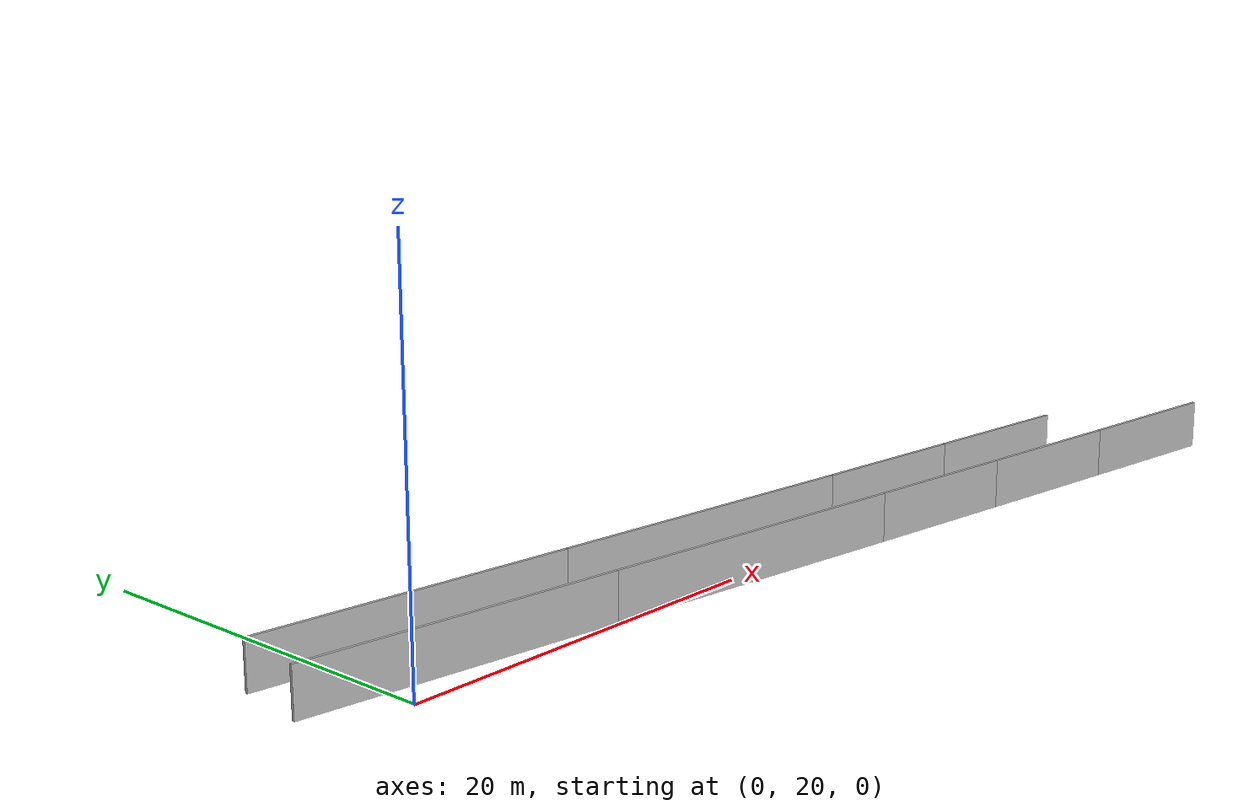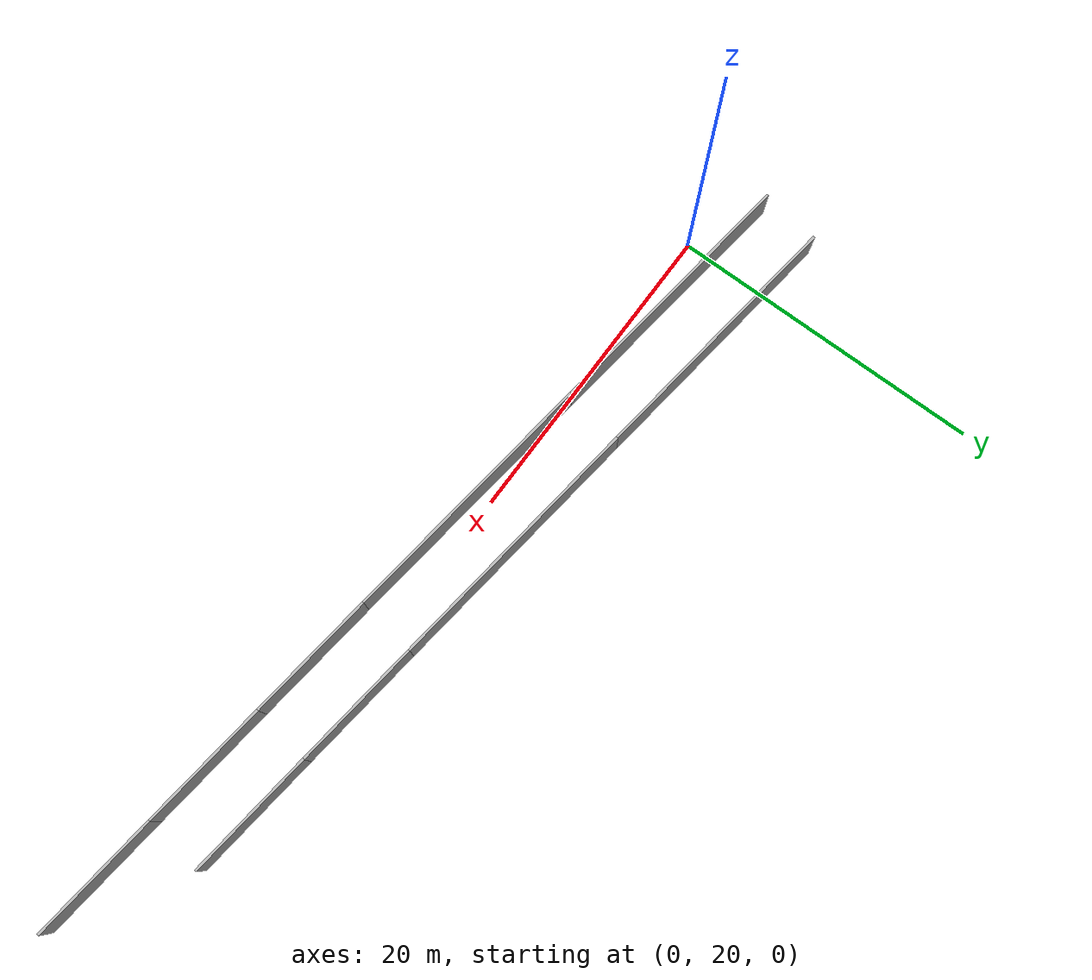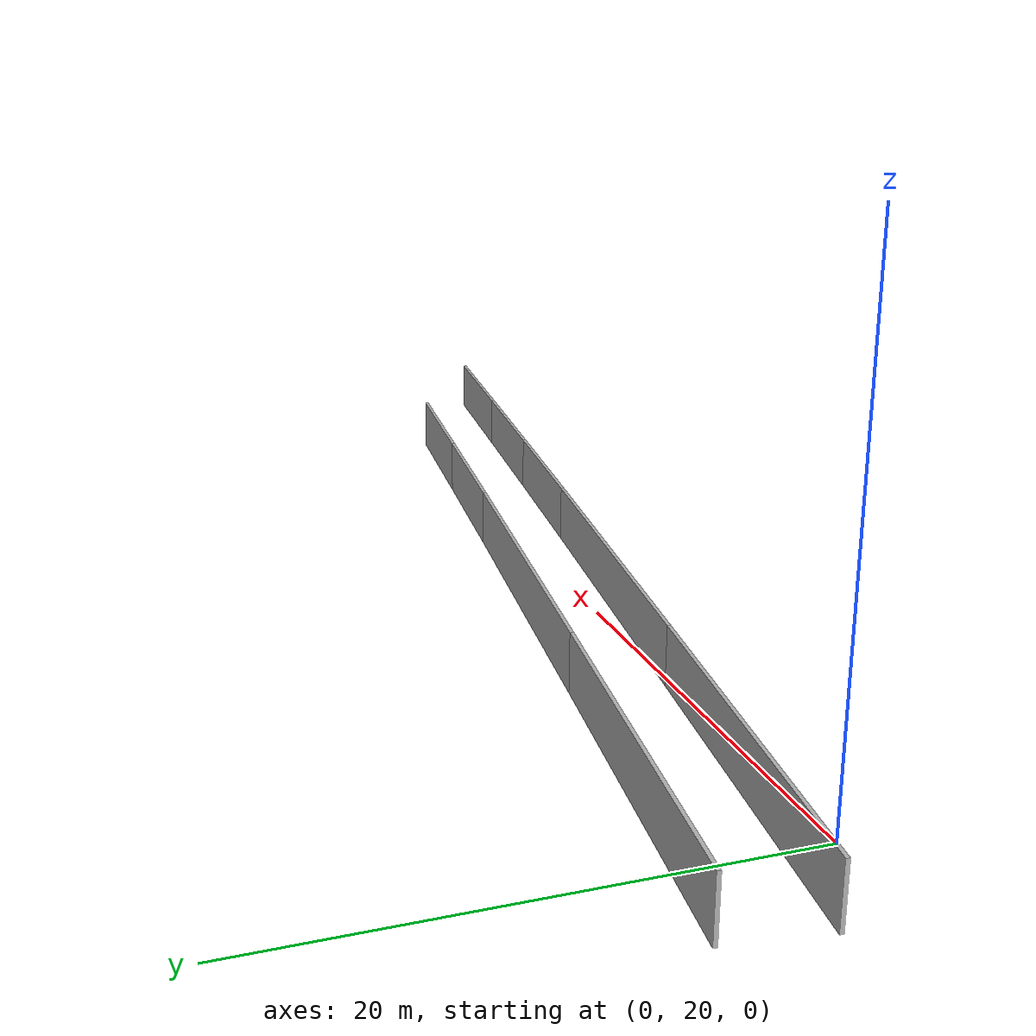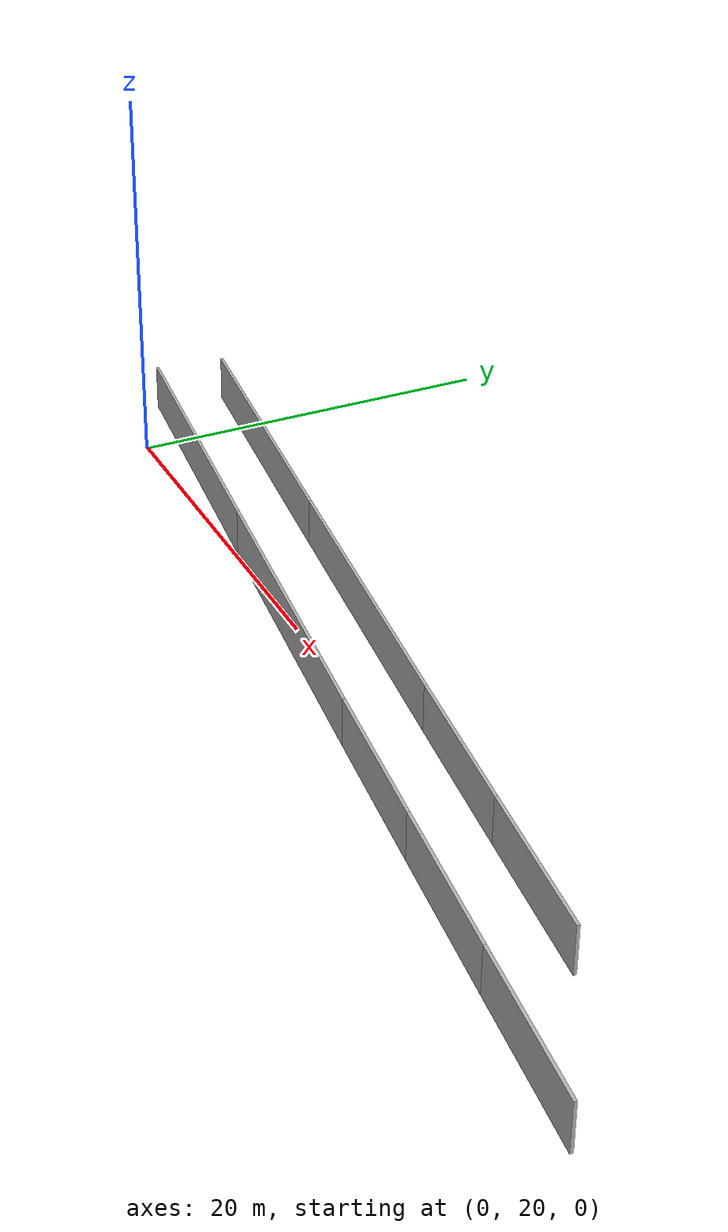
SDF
<?xml version="1.0" ?>
<sdf version="1.6">
  <model name="sps_3502">
    <pose frame="">0 0 0 0 -0 0</pose>
    <static>1</static>
    <self_collide>0</self_collide>
    <allow_auto_disable>0</allow_auto_disable>
    <link name="Wall4222">
      <kinematic>0</kinematic>
      <gravity>1</gravity>
      <self_collide>0</self_collide>
      <collision name="collision">
        <geometry>
          <box>
            <size>16.9873 0.15 2.5</size>
          </box>
        </geometry>
        <pose frame="">0 0 0 0 -0 0</pose>
      </collision>
      <visual name="visual">
        <geometry>
          <box>
            <size>16.9873 0.15 2.5</size>
          </box>
        </geometry>
        <pose frame="">0 0 0 0 -0 0</pose>
        <cast_shadows>1</cast_shadows>
        <transparency>0.0</transparency>
      </visual>
      <pose frame="">4.54745 25.0352 1.25 0 0 -0.128149</pose>
    </link>
    <link name="Wall4223">
      <kinematic>0</kinematic>
      <gravity>1</gravity>
      <self_collide>0</self_collide>
      <collision name="collision">
        <geometry>
          <box>
            <size>16.9874 0.15 2.5</size>
          </box>
        </geometry>
        <pose frame="">0 0 0 0 -0 0</pose>
      </collision>
      <visual name="visual">
        <geometry>
          <box>
            <size>16.9874 0.15 2.5</size>
          </box>
        </geometry>
        <pose frame="">0 0 0 0 -0 0</pose>
        <cast_shadows>1</cast_shadows>
        <transparency>0.0</transparency>
      </visual>
      <pose frame="">21.3981 22.8841 1.25 0 0 -0.12579</pose>
    </link>
    <link name="Wall4224">
      <kinematic>0</kinematic>
      <gravity>1</gravity>
      <self_collide>0</self_collide>
      <collision name="collision">
        <geometry>
          <box>
            <size>8.25191 0.15 2.5</size>
          </box>
        </geometry>
        <pose frame="">0 0 0 0 -0 0</pose>
      </collision>
      <visual name="visual">
        <geometry>
          <box>
            <size>8.25191 0.15 2.5</size>
          </box>
        </geometry>
        <pose frame="">0 0 0 0 -0 0</pose>
        <cast_shadows>1</cast_shadows>
        <transparency>0.0</transparency>
      </visual>
      <pose frame="">33.9202 21.318 1.25 0 0 -0.121602</pose>
    </link>
    <link name="Wall4225">
      <kinematic>0</kinematic>
      <gravity>1</gravity>
      <self_collide>0</self_collide>
      <collision name="collision">
        <geometry>
          <box>
            <size>8.25183 0.15 2.5</size>
          </box>
        </geometry>
        <pose frame="">0 0 0 0 -0 0</pose>
      </collision>
      <visual name="visual">
        <geometry>
          <box>
            <size>8.25183 0.15 2.5</size>
          </box>
        </geometry>
        <pose frame="">0 0 0 0 -0 0</pose>
        <cast_shadows>1</cast_shadows>
        <transparency>0.0</transparency>
      </visual>
      <pose frame="">42.1123 20.3267 1.25 0 0 -0.119241</pose>
    </link>
    <link name="Wall8964">
      <kinematic>0</kinematic>
      <gravity>1</gravity>
      <self_collide>0</self_collide>
      <collision name="collision">
        <geometry>
          <box>
            <size>16.967 0.15 2.5</size>
          </box>
        </geometry>
        <pose frame="">0 0 0 0 -0 0</pose>
      </collision>
      <visual name="visual">
        <geometry>
          <box>
            <size>16.967 0.15 2.5</size>
          </box>
        </geometry>
        <pose frame="">0 0 0 0 -0 0</pose>
        <cast_shadows>1</cast_shadows>
        <transparency>0.0</transparency>
      </visual>
      <pose frame="">3.98336 21.3204 1.25 0 0 -0.128188</pose>
    </link>
    <link name="Wall8965">
      <kinematic>0</kinematic>
      <gravity>1</gravity>
      <self_collide>0</self_collide>
      <collision name="collision">
        <geometry>
          <box>
            <size>16.9673 0.15 2.5</size>
          </box>
        </geometry>
        <pose frame="">0 0 0 0 -0 0</pose>
      </collision>
      <visual name="visual">
        <geometry>
          <box>
            <size>16.9673 0.15 2.5</size>
          </box>
        </geometry>
        <pose frame="">0 0 0 0 -0 0</pose>
        <cast_shadows>1</cast_shadows>
        <transparency>0.0</transparency>
      </visual>
      <pose frame="">20.8138 19.1713 1.25 0 0 -0.125821</pose>
    </link>
    <link name="Wall8966">
      <kinematic>0</kinematic>
      <gravity>1</gravity>
      <self_collide>0</self_collide>
      <collision name="collision">
        <geometry>
          <box>
            <size>8.26169 0.15 2.5</size>
          </box>
        </geometry>
        <pose frame="">0 0 0 0 -0 0</pose>
      </collision>
      <visual name="visual">
        <geometry>
          <box>
            <size>8.26169 0.15 2.5</size>
          </box>
        </geometry>
        <pose frame="">0 0 0 0 -0 0</pose>
        <cast_shadows>1</cast_shadows>
        <transparency>0.0</transparency>
      </visual>
      <pose frame="">33.3307 17.6054 1.25 0 0 -0.121658</pose>
    </link>
    <link name="Wall8967">
      <kinematic>0</kinematic>
      <gravity>1</gravity>
      <self_collide>0</self_collide>
      <collision name="collision">
        <geometry>
          <box>
            <size>8.2619 0.15 2.5</size>
          </box>
        </geometry>
        <pose frame="">0 0 0 0 -0 0</pose>
      </collision>
      <visual name="visual">
        <geometry>
          <box>
            <size>8.2619 0.15 2.5</size>
          </box>
        </geometry>
        <pose frame="">0 0 0 0 -0 0</pose>
        <cast_shadows>1</cast_shadows>
        <transparency>0.0</transparency>
      </visual>
      <pose frame="">41.5326 16.6125 1.25 0 0 -0.119289</pose>
    </link>
    <link name="Wall8968">
      <kinematic>0</kinematic>
      <gravity>1</gravity>
      <self_collide>0</self_collide>
      <collision name="collision">
        <geometry>
          <box>
            <size>8.26158 0.15 2.5</size>
          </box>
        </geometry>
        <pose frame="">0 0 0 0 -0 0</pose>
      </collision>
      <visual name="visual">
        <geometry>
          <box>
            <size>8.26158 0.15 2.5</size>
          </box>
        </geometry>
        <pose frame="">0 0 0 0 -0 0</pose>
        <cast_shadows>1</cast_shadows>
        <transparency>0.0</transparency>
      </visual>
      <pose frame="">49.7368 15.6391 1.25 0 0 -0.116898</pose>
    </link>
  </model>
</sdf>
